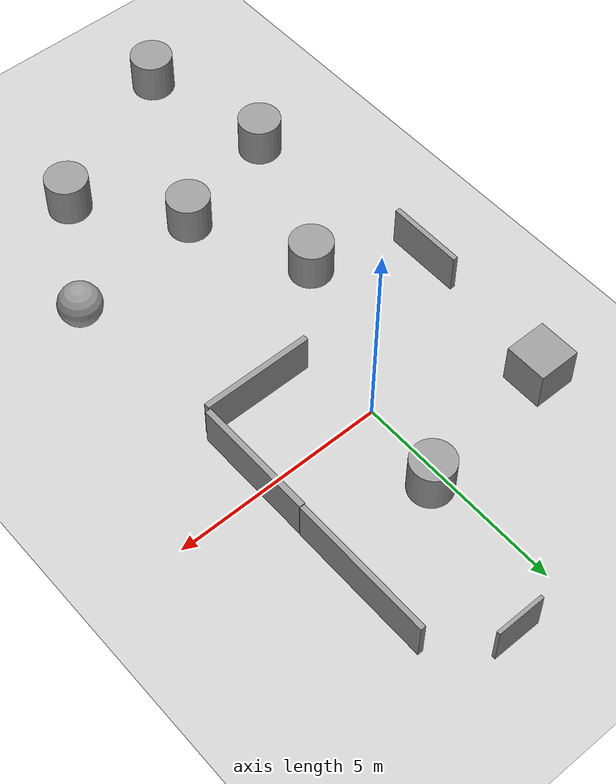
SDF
<sdf version="1.6">
 <world name="default">
  <light name="sun" type="directional">
   <pose>0 0 10 0 -0 0</pose>
   <diffuse>0.8 0.8 0.8 1</diffuse>
   <specular>0.2 0.2 0.2 1</specular>
   <attenuation>
    <range>1000</range>
    <constant>0.9</constant>
    <linear>0.01</linear>
    <quadratic>0.001</quadratic>
   </attenuation>
   <direction>-0.5 0.1 -0.9</direction>
  </light>
  <model name="ground_plane">
   <static>1</static>
   <link name="link">
    <collision name="collision">
     <geometry><plane><normal>0 0 1</normal><size>100 100</size></plane></geometry>
     <surface><friction><ode><mu>100</mu><mu2>50</mu2></ode></friction></surface>
    </collision>
    <visual name="visual">
     <cast_shadows>0</cast_shadows>
     <geometry><plane><normal>0 0 1</normal><size>100 100</size></plane></geometry>
     <material>
      <script><uri>file://media/materials/scripts/gazebo.material</uri><name>Gazebo/Grey</name></script>
     </material>
    </visual>
   </link>
  </model>
  <gravity>0 0 -9.8</gravity>
  <magnetic_field>6e-06 2.3e-05 -4.2e-05</magnetic_field>
  <atmosphere type="adiabatic"/>
  <physics name="default_physics" default="0" type="ode">
   <max_step_size>0.001</max_step_size>
   <real_time_factor>1</real_time_factor>
   <real_time_update_rate>1000</real_time_update_rate>
  </physics>
  <scene><ambient>0.4 0.4 0.4 1</ambient><background>0.7 0.7 0.7 1</background><shadows>1</shadows></scene>
  <spherical_coordinates>
   <surface_model>EARTH_WGS84</surface_model>
   <latitude_deg>0</latitude_deg>
   <longitude_deg>0</longitude_deg>
   <elevation>0</elevation>
   <heading_deg>0</heading_deg>
  </spherical_coordinates>
  <model name="unit_box">
   <pose>2.9772 -0.191746 0.589669 9.4e-05 2.6e-05 -8e-06</pose>
   <link name="link">
    <inertial>
     <mass>1</mass>
     <inertia>
      <ixx>0.166667</ixx>
      <ixy>0</ixy>
      <ixz>0</ixz>
      <iyy>0.166667</iyy>
      <iyz>0</iyz>
      <izz>0.166667</izz>
     </inertia>
    </inertial>
    <collision name="collision"><geometry><box><size>0.13746 2.86555 1</size></box></geometry></collision>
    <visual name="visual">
     <geometry><box><size>0.13746 2.86555 1</size></box></geometry>
     <material>
      <script><name>Gazebo/Grey</name><uri>file://media/materials/scripts/gazebo.material</uri></script>
     </material>
    </visual>
   </link>
  </model>
  <model name="unit_box_0">
   <pose>1.62701 -1.73204 0.58972 6.3e-05 1.9e-05 -1.56845</pose>
   <link name="link">
    <inertial>
     <mass>1</mass>
     <inertia>
      <ixx>0.166667</ixx>
      <ixy>0</ixy>
      <ixz>0</ixz>
      <iyy>0.166667</iyy>
      <iyz>0</iyz>
      <izz>0.166667</izz>
     </inertia>
    </inertial>
    <collision name="collision"><geometry><box><size>0.134741 2.62325 1</size></box></geometry></collision>
    <visual name="visual">
     <geometry><box><size>0.134741 2.62325 1</size></box></geometry>
     <material>
      <script><name>Gazebo/Grey</name><uri>file://media/materials/scripts/gazebo.material</uri></script>
     </material>
    </visual>
   </link>
  </model>
  <model name="unit_box_1">
   <pose>-3.46783 -2.15303 0.589789 -1.3e-05 7e-06 -0.001223</pose>
   <link name="link">
    <inertial>
     <mass>1</mass>
     <inertia>
      <ixx>0.166667</ixx>
      <ixy>0</ixy>
      <ixz>0</ixz>
      <iyy>0.166667</iyy>
      <iyz>0</iyz>
      <izz>0.166667</izz>
     </inertia>
    </inertial>
    <collision name="collision"><geometry><box><size>0.119833 1.82202 1</size></box></geometry></collision>
    <visual name="visual">
     <geometry><box><size>0.119833 1.82202 1</size></box></geometry>
     <material>
      <script><name>Gazebo/Grey</name><uri>file://media/materials/scripts/gazebo.material</uri></script>
     </material>
    </visual>
   </link>
  </model>
  <model name="unit_box_2">
   <pose>1.45736 5.57997 0.589796 -0 -7e-06 1e-06</pose>
   <link name="link">
    <inertial>
     <mass>1</mass>
     <inertia>
      <ixx>0.166667</ixx>
      <ixy>0</ixy>
      <ixz>0</ixz>
      <iyy>0.166667</iyy>
      <iyz>0</iyz>
      <izz>0.166667</izz>
     </inertia>
    </inertial>
    <collision name="collision"><geometry><box><size>1.1404 0.084159 1</size></box></geometry></collision>
    <visual name="visual">
     <geometry><box><size>1.1404 0.084159 1</size></box></geometry>
     <material>
      <script><name>Gazebo/Grey</name><uri>file://media/materials/scripts/gazebo.material</uri></script>
     </material>
    </visual>
   </link>
  </model>
  <model name="unit_box_3">
   <pose>2.99063 2.94374 0.589491 -0.000187 6e-05 -0.000319</pose>
   <link name="link">
    <inertial>
     <mass>1</mass>
     <inertia>
      <ixx>0.166667</ixx>
      <ixy>0</ixy>
      <ixz>0</ixz>
      <iyy>0.166667</iyy>
      <iyz>0</iyz>
      <izz>0.166667</izz>
     </inertia>
    </inertial>
    <collision name="collision"><geometry><box><size>0.125715 3.36949 1</size></box></geometry></collision>
    <visual name="visual">
     <geometry><box><size>0.125715 3.36949 1</size></box></geometry>
     <material>
      <script><name>Gazebo/Grey</name><uri>file://media/materials/scripts/gazebo.material</uri></script>
     </material>
    </visual>
   </link>
  </model>
  <model name="unit_cylinder">
   <pose>-1.44677 -3.60193 0.589802 4e-06 -1e-06 -0.000117</pose>
   <link name="link">
    <inertial>
     <mass>1</mass>
     <inertia><ixx>0.145833</ixx><ixy>0</ixy><ixz>0</ixz><iyy>0.145833</iyy><iyz>0</iyz><izz>0.125</izz></inertia>
    </inertial>
    <collision name="collision">
     <geometry><cylinder><radius>0.5</radius><length>1</length></cylinder></geometry>
    </collision>
    <visual name="visual">
     <geometry><cylinder><radius>0.5</radius><length>1</length></cylinder></geometry>
     <material>
      <script><name>Gazebo/Grey</name><uri>file://media/materials/scripts/gazebo.material</uri></script>
     </material>
    </visual>
   </link>
  </model>
  <model name="unit_cylinder_0">
   <pose>1.47837 -8.52682 0.5898 -0 -0 -3.6e-05</pose>
   <link name="link">
    <inertial>
     <mass>1</mass>
     <inertia><ixx>0.145833</ixx><ixy>0</ixy><ixz>0</ixz><iyy>0.145833</iyy><iyz>0</iyz><izz>0.125</izz></inertia>
    </inertial>
    <collision name="collision">
     <geometry><cylinder><radius>0.5</radius><length>1</length></cylinder></geometry>
    </collision>
    <visual name="visual">
     <geometry><cylinder><radius>0.5</radius><length>1</length></cylinder></geometry>
     <material>
      <script><name>Gazebo/Grey</name><uri>file://media/materials/scripts/gazebo.material</uri></script>
     </material>
    </visual>
   </link>
  </model>
  <model name="unit_cylinder_1">
   <pose>-2.9409 -7.14099 0.58979 -0 -0 -3.9e-05</pose>
   <link name="link">
    <inertial>
     <mass>1</mass>
     <inertia><ixx>0.145833</ixx><ixy>0</ixy><ixz>0</ixz><iyy>0.145833</iyy><iyz>0</iyz><izz>0.125</izz></inertia>
    </inertial>
    <collision name="collision">
     <geometry><cylinder><radius>0.5</radius><length>1</length></cylinder></geometry>
    </collision>
    <visual name="visual">
     <geometry><cylinder><radius>0.5</radius><length>1</length></cylinder></geometry>
     <material>
      <script><name>Gazebo/Grey</name><uri>file://media/materials/scripts/gazebo.material</uri></script>
     </material>
    </visual>
   </link>
  </model>
  <model name="unit_cylinder_2">
   <pose>-2.3242 -10.3822 0.5898 0 0 -9e-06</pose>
   <link name="link">
    <inertial>
     <mass>1</mass>
     <inertia><ixx>0.145833</ixx><ixy>0</ixy><ixz>0</ixz><iyy>0.145833</iyy><iyz>0</iyz><izz>0.125</izz></inertia>
    </inertial>
    <collision name="collision">
     <geometry><cylinder><radius>0.5</radius><length>1</length></cylinder></geometry>
    </collision>
    <visual name="visual">
     <geometry><cylinder><radius>0.5</radius><length>1</length></cylinder></geometry>
     <material>
      <script><name>Gazebo/Grey</name><uri>file://media/materials/scripts/gazebo.material</uri></script>
     </material>
    </visual>
   </link>
  </model>
  <model name="unit_sphere">
   <pose>3.13608 -5.79494 0.5898 0 -0 0</pose>
   <link name="link">
    <inertial>
     <mass>1</mass>
     <inertia><ixx>0.1</ixx><ixy>0</ixy><ixz>0</ixz><iyy>0.1</iyy><iyz>0</iyz><izz>0.1</izz></inertia>
    </inertial>
    <collision name="collision"><geometry><sphere><radius>0.5</radius></sphere></geometry></collision>
    <visual name="visual">
     <geometry><sphere><radius>0.5</radius></sphere></geometry>
     <material>
      <script><name>Gazebo/Grey</name><uri>file://media/materials/scripts/gazebo.material</uri></script>
     </material>
    </visual>
   </link>
  </model>
  <model name="unit_cylinder_3">
   <pose>-0.236336 -6.34412 0.5898 -0 -0 -7e-06</pose>
   <link name="link">
    <inertial>
     <mass>1</mass>
     <inertia><ixx>0.145833</ixx><ixy>0</ixy><ixz>0</ixz><iyy>0.145833</iyy><iyz>0</iyz><izz>0.125</izz></inertia>
    </inertial>
    <collision name="collision">
     <geometry><cylinder><radius>0.5</radius><length>1</length></cylinder></geometry>
    </collision>
    <visual name="visual">
     <geometry><cylinder><radius>0.5</radius><length>1</length></cylinder></geometry>
     <material>
      <script><name>Gazebo/Grey</name><uri>file://media/materials/scripts/gazebo.material</uri></script>
     </material>
    </visual>
   </link>
  </model>
  <model name="unit_cylinder_4">
   <pose>0.370742 2.12634 0.5898 0 0 -2e-06</pose>
   <link name="link">
    <inertial>
     <mass>1</mass>
     <inertia><ixx>0.145833</ixx><ixy>0</ixy><ixz>0</ixz><iyy>0.145833</iyy><iyz>0</iyz><izz>0.125</izz></inertia>
    </inertial>
    <collision name="collision">
     <geometry><cylinder><radius>0.5</radius><length>1</length></cylinder></geometry>
    </collision>
    <visual name="visual">
     <geometry><cylinder><radius>0.5</radius><length>1</length></cylinder></geometry>
     <material>
      <script><name>Gazebo/Grey</name><uri>file://media/materials/scripts/gazebo.material</uri></script>
     </material>
    </visual>
   </link>
  </model>
  <model name="unit_box_4">
   <pose>-3.13033 1.66064 0.5898 0 -0 0</pose>
   <link name="link">
    <inertial>
     <mass>1</mass>
     <inertia>
      <ixx>0.166667</ixx>
      <ixy>0</ixy>
      <ixz>0</ixz>
      <iyy>0.166667</iyy>
      <iyz>0</iyz>
      <izz>0.166667</izz>
     </inertia>
    </inertial>
    <collision name="collision"><geometry><box><size>1 1 1</size></box></geometry></collision>
    <visual name="visual">
     <geometry><box><size>1 1 1</size></box></geometry>
     <material>
      <script><name>Gazebo/Grey</name><uri>file://media/materials/scripts/gazebo.material</uri></script>
     </material>
    </visual>
   </link>
  </model>
 </world>
</sdf>
